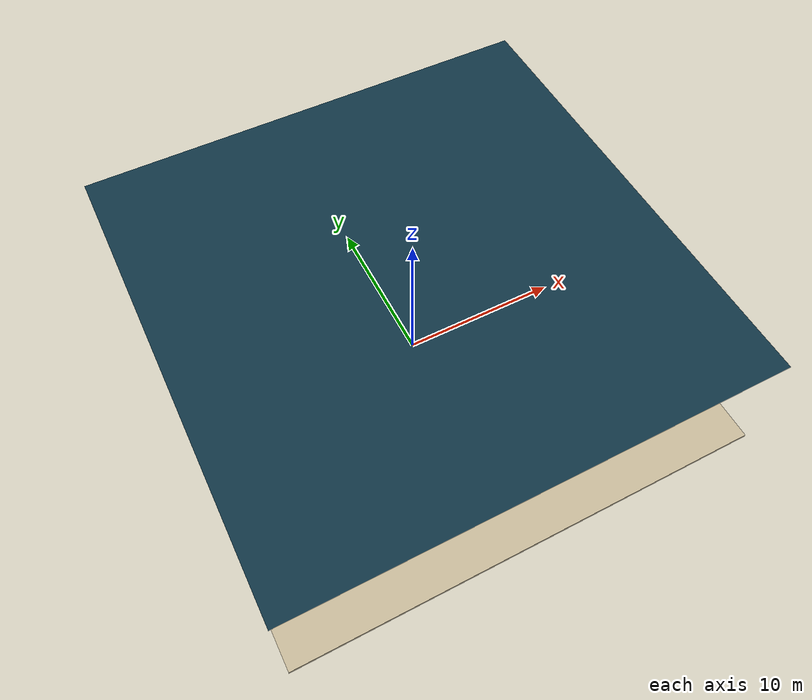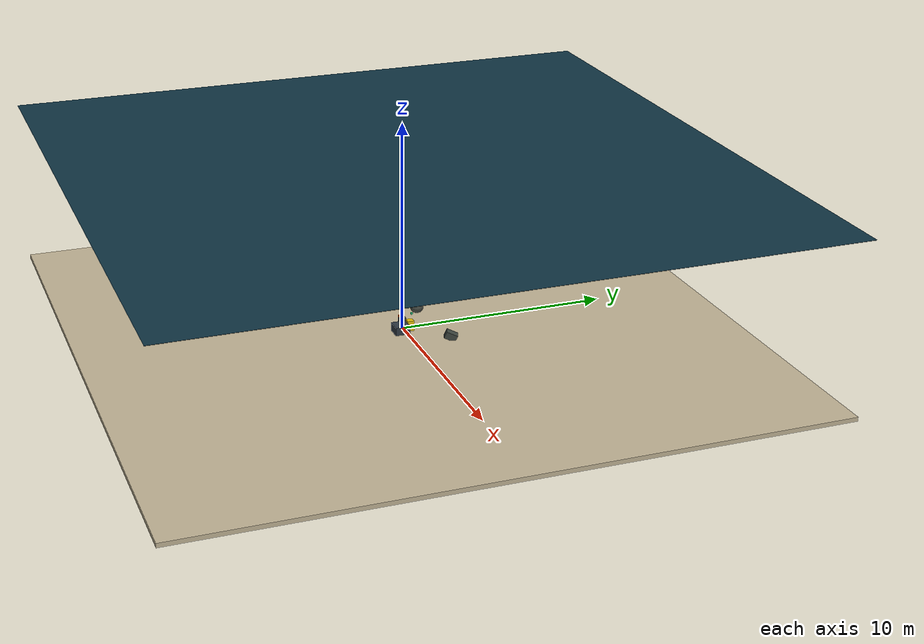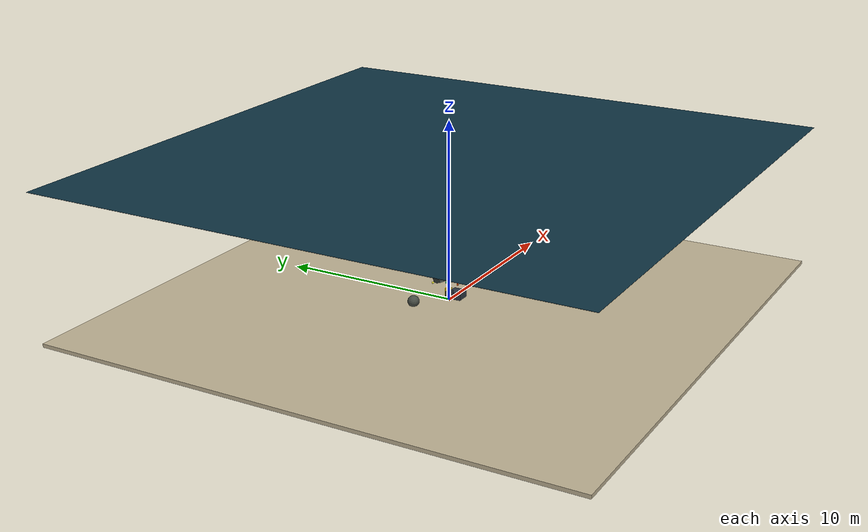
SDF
<?xml version="1.0" ?>
<sdf version="1.9">
  <world name="underwater">

    <physics name="1ms" type="ignored">
      <max_step_size>0.001</max_step_size>
      <real_time_factor>1.0</real_time_factor>
    </physics>

    <gravity>0 0 -9.81</gravity>

    <plugin filename="gz-sim-physics-system"
            name="gz::sim::systems::Physics"/>
    <plugin filename="gz-sim-user-commands-system"
            name="gz::sim::systems::UserCommands"/>
    <plugin filename="gz-sim-scene-broadcaster-system"
            name="gz::sim::systems::SceneBroadcaster"/>
    <plugin filename="gz-sim-contact-system"
            name="gz::sim::systems::Contact"/>

    <plugin filename="gz-sim-sensors-system"
            name="gz::sim::systems::Sensors">
      <render_engine>ogre2</render_engine>
      <background_color>0.05 0.16 0.22</background_color>
    </plugin>

    <plugin filename="gz-sim-buoyancy-system"
            name="gz::sim::systems::Buoyancy">
      <graded_buoyancy>
        <default_density>1025</default_density>   <!-- seawater -->
        <density_change>
          <above_depth>8.0</above_depth>
          <density>1.225</density>                <!-- air above the surface -->
        </density_change>
      </graded_buoyancy>
      <enable>target_canister</enable>
      <enable>drift_float</enable>
      <enable>neutral_pod</enable>
    </plugin>

    <!-- ============================ GUI ================================ -->
    <gui fullscreen="0">
      <plugin filename="MinimalScene" name="3D View">
        <gz-gui>
          <title>3D View</title><property type="bool" key="showTitleBar">false</property>
          <property type="string" key="state">docked</property>
        </gz-gui>
        <engine>ogre2</engine>
        <scene>scene</scene>
        <ambient_light>0.18 0.28 0.32</ambient_light>
        <background_color>0.05 0.16 0.22</background_color>
        <camera_pose>1.60 1.30 2.40 0 0.5992 -2.4281</camera_pose>
      </plugin>
      <plugin filename="GzSceneManager" name="Scene Manager">
        <gz-gui><property key="resizable" type="bool">false</property>
          <property key="showTitleBar" type="bool">false</property>
          <property key="state" type="string">floating</property></gz-gui>
      </plugin>
      <plugin filename="InteractiveViewControl" name="Interactive view control">
        <gz-gui><property key="resizable" type="bool">false</property>
          <property key="showTitleBar" type="bool">false</property>
          <property key="state" type="string">floating</property></gz-gui>
      </plugin>
      <plugin filename="CameraTracking" name="Camera tracking">
        <gz-gui><property key="resizable" type="bool">false</property>
          <property key="showTitleBar" type="bool">false</property>
          <property key="state" type="string">floating</property></gz-gui>
      </plugin>
      <plugin filename="EntityContextMenuPlugin" name="Entity context menu">
        <gz-gui><property key="resizable" type="bool">false</property>
          <property key="showTitleBar" type="bool">false</property>
          <property key="state" type="string">floating</property></gz-gui>
      </plugin>
      <plugin filename="SelectEntities" name="Select entities">
        <gz-gui><property key="resizable" type="bool">false</property>
          <property key="showTitleBar" type="bool">false</property>
          <property key="state" type="string">floating</property></gz-gui>
      </plugin>
      <plugin filename="VisualizationCapabilities" name="Visualization capabilities">
        <gz-gui><property key="resizable" type="bool">false</property>
          <property key="showTitleBar" type="bool">false</property>
          <property key="state" type="string">floating</property></gz-gui>
      </plugin>
      <plugin filename="WorldControl" name="World control">
        <gz-gui><title>World control</title>
          <property type="bool" key="showTitleBar">false</property>
          <property type="bool" key="resizable">false</property>
          <property type="double" key="height">72</property>
          <property type="double" key="width">121</property>
          <property type="double" key="z">1</property>
          <property type="string" key="state">floating</property>
          <anchors target="3D View"><line own="left" target="left"/>
            <line own="bottom" target="bottom"/></anchors></gz-gui>
        <play_pause>true</play_pause><step>true</step><start_paused>false</start_paused>
      </plugin>
      <plugin filename="WorldStats" name="World stats">
        <gz-gui><title>World stats</title>
          <property type="bool" key="showTitleBar">false</property>
          <property type="bool" key="resizable">false</property>
          <property type="double" key="height">110</property>
          <property type="double" key="width">290</property>
          <property type="double" key="z">1</property>
          <property type="string" key="state">floating</property>
          <anchors target="3D View"><line own="right" target="right"/>
            <line own="bottom" target="bottom"/></anchors></gz-gui>
        <sim_time>true</sim_time><real_time>true</real_time>
        <real_time_factor>true</real_time_factor><iterations>true</iterations>
      </plugin>
      <plugin filename="Screenshot" name="Screenshot">
        <gz-gui><property type="string" key="state">floating</property>
          <property type="double" key="height">50</property>
          <property type="double" key="width">50</property></gz-gui>
      </plugin>
      <plugin filename="EntityTree" name="Entity tree"/>
      <plugin filename="ComponentInspector" name="Component inspector"/>
    </gui>

    <!-- =============================== SCENE =========================== -->
    <scene>
      <ambient>0.18 0.28 0.32 1</ambient>
      <background>0.05 0.16 0.22 1</background>
      <grid>false</grid>
    </scene>

    <!-- Filtered downwelling sunlight: dim, cool, and heavily attenuated. -->
    <light type="directional" name="downwelling">
      <pose>0 0 10 0 0 0</pose>
      <diffuse>0.35 0.48 0.52 1</diffuse>
      <specular>0.10 0.14 0.16 1</specular>
      <direction>0.2 0.25 -0.95</direction>
      <cast_shadows>true</cast_shadows>
      <attenuation>
        <range>40</range>
        <constant>0.6</constant>
        <linear>0.05</linear>
        <quadratic>0.002</quadratic>
      </attenuation>
    </light>

    <light type="spot" name="rov_light_port">
      <pose>-0.4 0.6 2.2 0 0 0</pose>
      <diffuse>0.9 0.92 0.85 1</diffuse>
      <specular>0.4 0.4 0.4 1</specular>
      <direction>0.35 -0.5 -1.0</direction>
      <cast_shadows>false</cast_shadows>
      <attenuation><range>12</range><constant>0.3</constant>
        <linear>0.10</linear><quadratic>0.02</quadratic></attenuation>
      <spot><inner_angle>0.5</inner_angle><outer_angle>1.0</outer_angle>
        <falloff>1.2</falloff></spot>
    </light>

    <light type="spot" name="rov_light_stbd">
      <pose>1.2 -1.0 2.2 0 0 0</pose>
      <diffuse>0.85 0.90 0.88 1</diffuse>
      <specular>0.3 0.3 0.3 1</specular>
      <direction>-0.4 0.45 -1.0</direction>
      <cast_shadows>false</cast_shadows>
      <attenuation><range>12</range><constant>0.3</constant>
        <linear>0.10</linear><quadratic>0.02</quadratic></attenuation>
      <spot><inner_angle>0.5</inner_angle><outer_angle>1.0</outer_angle>
        <falloff>1.2</falloff></spot>
    </light>

    <!-- =============================== SEABED ========================== -->
    <model name="seabed">
      <static>true</static>
      <pose>0 0 -0.1 0 0 0</pose>
      <link name="link">
        <collision name="collision">
          <geometry><box><size>30 30 0.2</size></box></geometry>
          <surface><friction><ode><mu>0.9</mu><mu2>0.9</mu2></ode></friction></surface>
        </collision>
        <visual name="visual">
          <geometry><box><size>30 30 0.2</size></box></geometry>
          <material>
            <diffuse>0.75 0.70 0.58 1</diffuse>
            <specular>0.05 0.05 0.05 1</specular>
            <pbr>
              <metal>
                <albedo_map>package://uw_arm_bringup/materials/textures/seabed_sand.png</albedo_map>
                <roughness>0.95</roughness>
                <metalness>0.0</metalness>
              </metal>
            </pbr>
          </material>
        </visual>
      </link>
    </model>

    <!-- Scattered boulders: visual texture for the scene and, more usefully,
         non-target clutter that the colour segmenter has to reject. -->
    <model name="boulder_a">
      <static>true</static>
      <pose>-1.6 1.3 0.22 0.3 0.2 0.7</pose>
      <link name="link">
        <collision name="collision"><geometry><sphere><radius>0.32</radius></sphere></geometry></collision>
        <visual name="visual">
          <geometry><sphere><radius>0.32</radius></sphere></geometry>
          <material><diffuse>0.28 0.30 0.27 1</diffuse><specular>0.02 0.02 0.02 1</specular></material>
        </visual>
      </link>
    </model>

    <model name="boulder_b">
      <static>true</static>
      <pose>1.9 1.7 0.16 0 0.4 1.2</pose>
      <link name="link">
        <collision name="collision"><geometry><box><size>0.55 0.42 0.33</size></box></geometry></collision>
        <visual name="visual">
          <geometry><box><size>0.55 0.42 0.33</size></box></geometry>
          <material><diffuse>0.24 0.27 0.25 1</diffuse><specular>0.02 0.02 0.02 1</specular></material>
        </visual>
      </link>
    </model>

    <!-- ========================= FIXED STRUCTURE ======================= -->
    <!-- Manipulator pedestal. The arm's world_to_base fixed joint anchors it
         here; spawn the robot at z = 0.5. -->
    <model name="arm_pedestal">
      <static>true</static>
      <pose>0 0 0.25 0 0 0</pose>
      <link name="link">
        <collision name="collision"><geometry><box><size>0.30 0.30 0.50</size></box></geometry></collision>
        <visual name="visual">
          <geometry><box><size>0.30 0.30 0.50</size></box></geometry>
          <material><diffuse>0.22 0.26 0.30 1</diffuse><specular>0.25 0.25 0.25 1</specular></material>
        </visual>
      </link>
    </model>

    <!-- Intervention panel: the work surface the cargo sits on. -->
    <model name="intervention_panel">
      <static>true</static>
      <pose>0.45 -0.25 0.20 0 0 0</pose>
      <link name="link">
        <collision name="collision"><geometry><box><size>0.70 0.70 0.40</size></box></geometry></collision>
        <visual name="visual">
          <geometry><box><size>0.70 0.70 0.40</size></box></geometry>
          <material><diffuse>0.18 0.22 0.26 1</diffuse><specular>0.15 0.15 0.15 1</specular></material>
        </visual>
      </link>
    </model>

    <model name="dropoff_basket">
      <static>true</static>
      <pose>0.35 0.25 0.25 0 0 0</pose>
      <link name="link">
        <collision name="collision"><geometry><box><size>0.30 0.30 0.50</size></box></geometry></collision>
        <visual name="visual">
          <geometry><box><size>0.30 0.30 0.50</size></box></geometry>
          <material><diffuse>0.90 0.75 0.05 1</diffuse><specular>0.2 0.2 0.2 1</specular></material>
        </visual>
      </link>
    </model>

    <!-- ======================== GRASPABLE CARGO ======================== -->
    <model name="target_canister">
      <pose>0.40 -0.30 0.80 0 0 0</pose>
      <link name="base_link">
        <inertial>
          <mass>0.4428</mass>
          <inertia><ixx>6.64e-4</ixx><iyy>6.64e-4</iyy><izz>2.66e-4</izz>
                   <ixy>0</ixy><ixz>0</ixz><iyz>0</iyz></inertia>
          <fluid_added_mass>
            <xx>0.44</xx><xy>0</xy><xz>0</xz><xp>0</xp><xq>0</xq><xr>0</xr>
            <yy>0.44</yy><yz>0</yz><yp>0</yp><yq>0</yq><yr>0</yr>
            <zz>0.25</zz><zp>0</zp><zq>0</zq><zr>0</zr>
            <pp>2.0e-4</pp><pq>0</pq><pr>0</pr>
            <qq>2.0e-4</qq><qr>0</qr>
            <rr>1.0e-4</rr>
          </fluid_added_mass>
        </inertial>
        <collision name="collision">
          <geometry><box><size>0.06 0.06 0.12</size></box></geometry>
          <surface><friction><ode><mu>1.2</mu><mu2>1.2</mu2></ode></friction></surface>
        </collision>
        <visual name="visual">
          <geometry><box><size>0.06 0.06 0.12</size></box></geometry>
          <material><diffuse>0.95 0.35 0.05 1</diffuse><specular>0.3 0.2 0.1 1</specular>
                    <emissive>0.10 0.03 0.0 1</emissive></material>
        </visual>
      </link>
    </model>

    <!-- FLOATING. Density ~300 kg/m^3, so it rises and settles at the surface.
         Watch it climb on startup - that is the graded buoyancy working. -->
    <model name="drift_float">
      <pose>-0.9 0.5 1.2 0 0 0</pose>
      <link name="base_link">
        <inertial>
          <mass>0.271</mass>
          <inertia><ixx>3.9e-4</ixx><iyy>3.9e-4</iyy><izz>3.9e-4</izz>
                   <ixy>0</ixy><ixz>0</ixz><iyz>0</iyz></inertia>
          <!-- Sphere added mass = 0.5 * rho * V = 0.46 kg, i.e. 1.7x the body
               mass. Only the implicit path can carry a ratio like this. -->
          <fluid_added_mass>
            <xx>0.46</xx><xy>0</xy><xz>0</xz><xp>0</xp><xq>0</xq><xr>0</xr>
            <yy>0.46</yy><yz>0</yz><yp>0</yp><yq>0</yq><yr>0</yr>
            <zz>0.46</zz><zp>0</zp><zq>0</zq><zr>0</zr>
            <pp>1.0e-4</pp><pq>0</pq><pr>0</pr>
            <qq>1.0e-4</qq><qr>0</qr>
            <rr>1.0e-4</rr>
          </fluid_added_mass>
        </inertial>
        <collision name="collision">
          <geometry><sphere><radius>0.06</radius></sphere></geometry>
        </collision>
        <visual name="visual">
          <geometry><sphere><radius>0.06</radius></sphere></geometry>
          <material><diffuse>0.95 0.92 0.25 1</diffuse><specular>0.4 0.4 0.2 1</specular></material>
        </visual>
      </link>
      <plugin filename="gz-sim-hydrodynamics-system"
              name="gz::sim::systems::Hydrodynamics">
        <link_name>base_link</link_name>
        <xDotU>0</xDotU><yDotV>0</yDotV><zDotW>0</zDotW>
        <kDotP>0</kDotP><mDotQ>0</mDotQ><nDotR>0</nDotR>
        <xU>-0.6</xU><yV>-0.6</yV><zW>-0.6</zW>
        <xUabsU>-5.8</xUabsU><yVabsV>-5.8</yVabsV><zWabsW>-5.8</zWabsW>
        <kPabsP>-0.02</kPabsP><mQabsQ>-0.02</mQabsQ><nRabsR>-0.02</nRabsR>
      </plugin>
    </model>

    <model name="neutral_pod">
      <pose>0.30 0.35 0.80 0 0 0</pose>
      <link name="base_link">
        <inertial>
          <mass>0.525</mass>
          <inertia><ixx>5.6e-4</ixx><iyy>5.6e-4</iyy><izz>5.6e-4</izz>
                   <ixy>0</ixy><ixz>0</ixz><iyz>0</iyz></inertia>
          <fluid_added_mass>
            <xx>0.37</xx><xy>0</xy><xz>0</xz><xp>0</xp><xq>0</xq><xr>0</xr>
            <yy>0.37</yy><yz>0</yz><yp>0</yp><yq>0</yq><yr>0</yr>
            <zz>0.37</zz><zp>0</zp><zq>0</zq><zr>0</zr>
            <pp>1.5e-4</pp><pq>0</pq><pr>0</pr>
            <qq>1.5e-4</qq><qr>0</qr>
            <rr>1.5e-4</rr>
          </fluid_added_mass>
        </inertial>
        <collision name="collision">
          <geometry><box><size>0.08 0.08 0.08</size></box></geometry>
        </collision>
        <visual name="visual">
          <geometry><box><size>0.08 0.08 0.08</size></box></geometry>
          <material><diffuse>0.20 0.85 0.55 1</diffuse><specular>0.3 0.3 0.3 1</specular></material>
        </visual>
      </link>
      <plugin filename="gz-sim-hydrodynamics-system"
              name="gz::sim::systems::Hydrodynamics">
        <link_name>base_link</link_name>
        <xDotU>0</xDotU><yDotV>0</yDotV><zDotW>0</zDotW>
        <kDotP>0</kDotP><mDotQ>0</mDotQ><nDotR>0</nDotR>
        <xU>-0.5</xU><yV>-0.5</yV><zW>-0.5</zW>
        <xUabsU>-3.3</xUabsU><yVabsV>-3.3</yVabsV><zWabsW>-3.3</zWabsW>
        <kPabsP>-0.02</kPabsP><mQabsQ>-0.02</mQabsQ><nRabsR>-0.02</nRabsR>
      </plugin>
    </model>

    <model name="water_surface">
      <static>true</static>
      <pose>0 0 8.0 0 0 0</pose>
      <link name="link">
        <visual name="visual">
          <geometry><box><size>30 30 0.02</size></box></geometry>
          <material>
            <diffuse>0.06 0.20 0.26 1</diffuse>
            <specular>0.10 0.16 0.18 1</specular>
            <emissive>0.02 0.07 0.09 1</emissive>
          </material>
        </visual>
      </link>
    </model>

    <!-- ====================== THIRD-PERSON CAMERA ====================== -->
    <model name="scene_camera">
      <static>true</static>
      <pose>1.60 1.30 2.40 0 0.5992 -2.4281</pose>
      <link name="link">
        <sensor name="scene_cam" type="camera">
          <topic>scene_camera/image</topic>
          <update_rate>30</update_rate>
          <!-- always_on so rendering does not depend on the lazy
               ROS-subscriber -> bridge -> gz-subscriber chain resolving. -->
          <always_on>true</always_on>
          <camera>
            <horizontal_fov>1.35</horizontal_fov>
            <image><width>1280</width><height>720</height><format>R8G8B8</format></image>
            <clip><near>0.05</near><far>60.0</far></clip>
          </camera>
        </sensor>
      </link>
    </model>

  </world>
</sdf>
